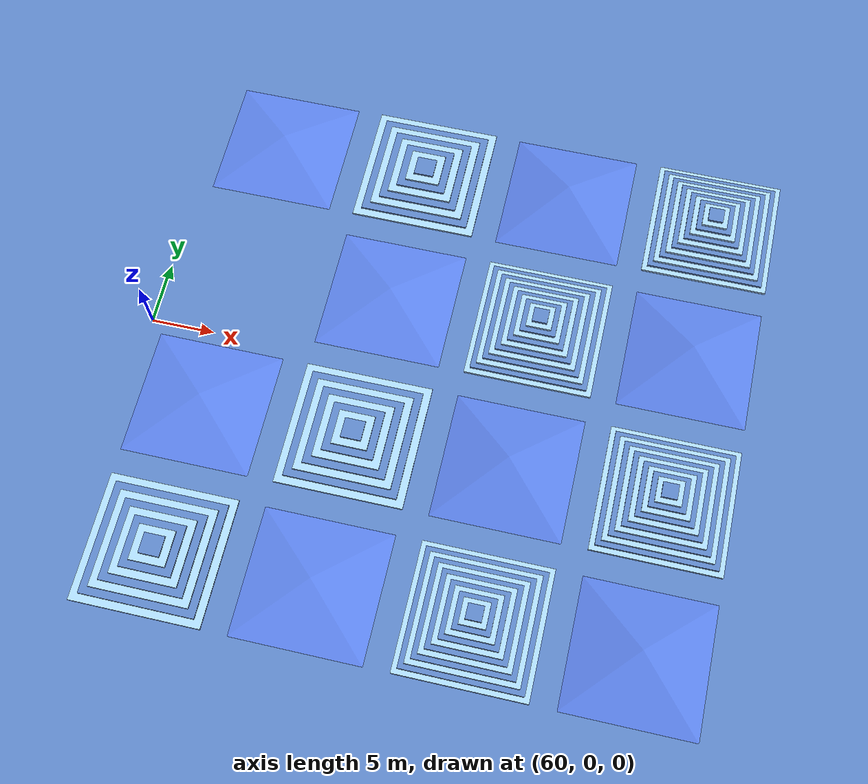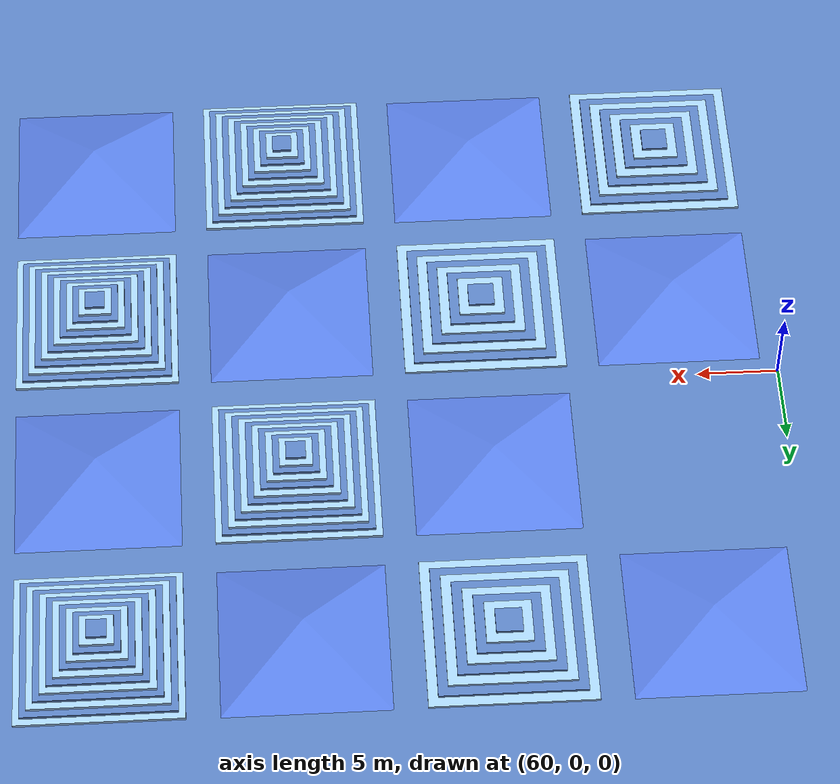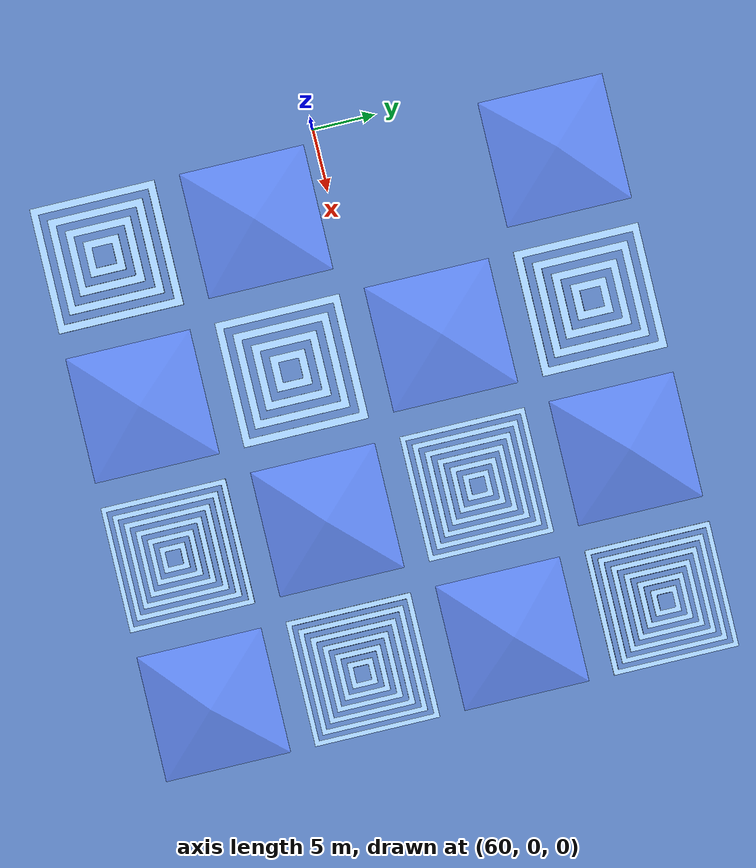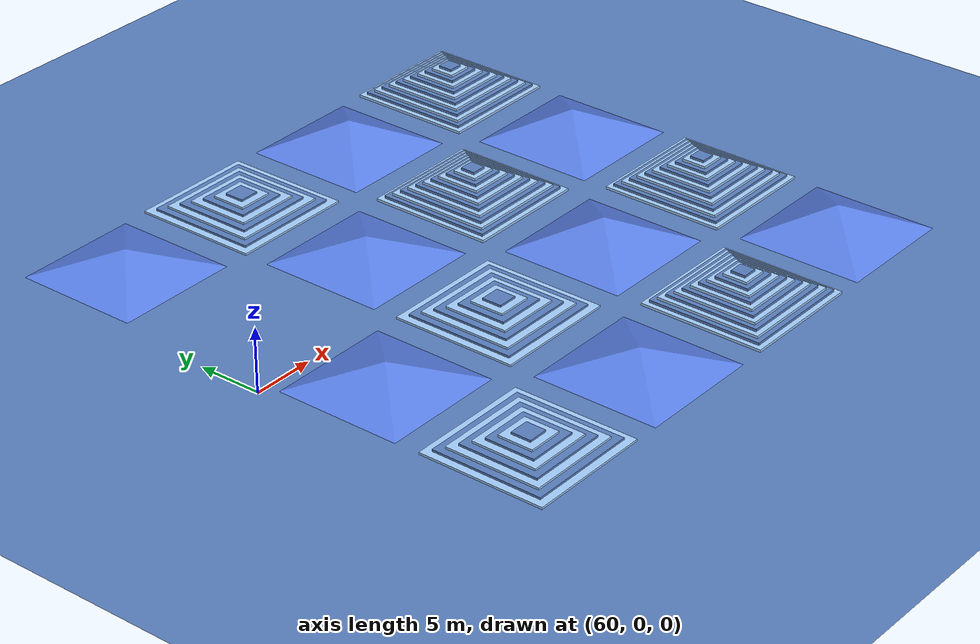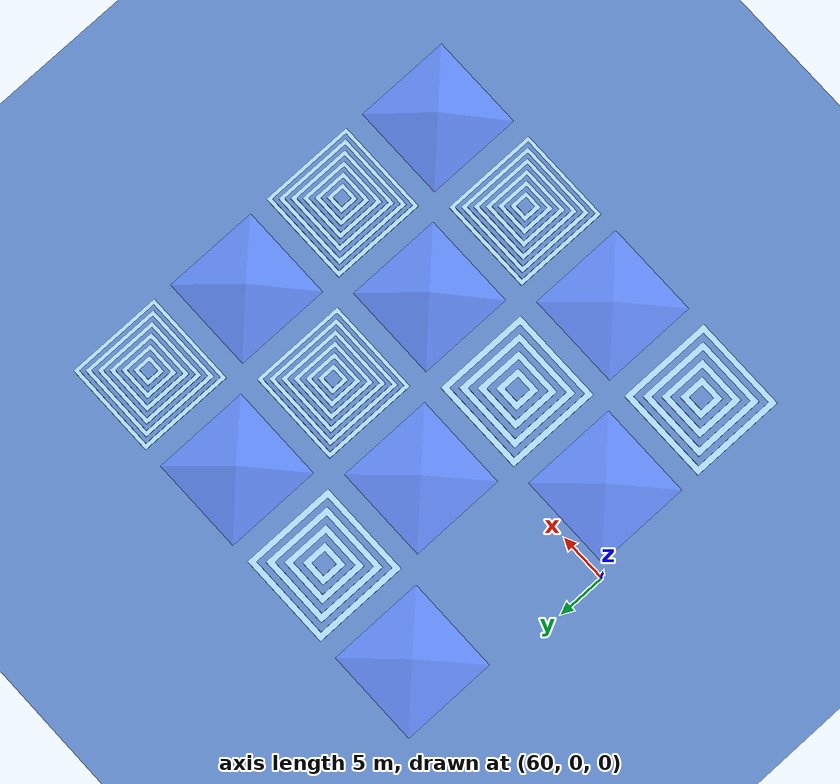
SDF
<sdf version="1.6">
 <world name="mixed_world">
  <model name="ground_plane">
   <static>true</static>
   <link name="link">
    <collision name="collision">
     <geometry><plane><normal>0 0 1</normal><size>500 500</size></plane></geometry>
     <surface><friction><ode><mu>0.8</mu><mu2>0.8</mu2></ode></friction></surface>
    </collision>
    <visual name="visual">
     <geometry><plane><normal>0 0 1</normal><size>500 500</size></plane></geometry>
     <material><ambient>0.35 0.5 0.75 1</ambient><diffuse>0.35 0.5 0.75 1</diffuse></material>
    </visual>
   </link>
  </model>
  <model name="pyramid_lvl3_slope_2">
   <static>true</static>
   <pose>66 -6 0 0 0 0</pose>
   <link name="slope">
    <collision name="c">
     <geometry><mesh><uri>model://kyon_urdf/meshes/pyramid_slope_20deg_10x10.stl</uri></mesh></geometry>
     <surface><friction><ode><mu>0.7</mu><mu2>0.7</mu2></ode></friction></surface>
    </collision>
    <visual name="v">
     <geometry><mesh><uri>model://kyon_urdf/meshes/pyramid_slope_20deg_10x10.stl</uri></mesh></geometry>
     <material><ambient>0.35 0.5 0.9 1</ambient><diffuse>0.35 0.5 0.9 1</diffuse></material>
    </visual>
   </link>
  </model>
  <model name="pyramid_lvl3_slope_3">
   <static>true</static>
   <pose>78 6 0 0 0 0</pose>
   <link name="slope">
    <collision name="c">
     <geometry><mesh><uri>model://kyon_urdf/meshes/pyramid_slope_20deg_10x10.stl</uri></mesh></geometry>
     <surface><friction><ode><mu>0.7</mu><mu2>0.7</mu2></ode></friction></surface>
    </collision>
    <visual name="v">
     <geometry><mesh><uri>model://kyon_urdf/meshes/pyramid_slope_20deg_10x10.stl</uri></mesh></geometry>
     <material><ambient>0.35 0.5 0.9 1</ambient><diffuse>0.35 0.5 0.9 1</diffuse></material>
    </visual>
   </link>
  </model>
  <model name="pyramid_lvl3_stairs_4">
   <static>true</static>
   <pose>78 -6 0 0 0 0</pose>
   <link name="s1">
    <pose>0 0 0.08 0 0 0</pose>
    <collision name="c">
     <geometry><box><size>10 10 0.16</size></box></geometry>
     <surface><friction><ode><mu>0.8</mu><mu2>0.8</mu2></ode></friction></surface>
    </collision>
    <visual name="v">
     <geometry><box><size>10 10 0.16</size></box></geometry>
     <material><ambient>0.65 0.82 1 1</ambient><diffuse>0.65 0.82 1 1</diffuse></material>
    </visual>
   </link>
   <link name="s2">
    <pose>0 0 0.24 0 0 0</pose>
    <collision name="c">
     <geometry><box><size>8.8 8.8 0.16</size></box></geometry>
     <surface><friction><ode><mu>0.8</mu><mu2>0.8</mu2></ode></friction></surface>
    </collision>
    <visual name="v">
     <geometry><box><size>8.8 8.8 0.16</size></box></geometry>
     <material><ambient>0.35 0.5 0.75 1</ambient><diffuse>0.35 0.5 0.75 1</diffuse></material>
    </visual>
   </link>
   <link name="s3">
    <pose>0 0 0.40 0 0 0</pose>
    <collision name="c">
     <geometry><box><size>7.6 7.6 0.16</size></box></geometry>
     <surface><friction><ode><mu>0.8</mu><mu2>0.8</mu2></ode></friction></surface>
    </collision>
    <visual name="v">
     <geometry><box><size>7.6 7.6 0.16</size></box></geometry>
     <material><ambient>0.65 0.82 1 1</ambient><diffuse>0.65 0.82 1 1</diffuse></material>
    </visual>
   </link>
   <link name="s4">
    <pose>0 0 0.56 0 0 0</pose>
    <collision name="c">
     <geometry><box><size>6.4 6.4 0.16</size></box></geometry>
     <surface><friction><ode><mu>0.8</mu><mu2>0.8</mu2></ode></friction></surface>
    </collision>
    <visual name="v">
     <geometry><box><size>6.4 6.4 0.16</size></box></geometry>
     <material><ambient>0.35 0.5 0.75 1</ambient><diffuse>0.35 0.5 0.75 1</diffuse></material>
    </visual>
   </link>
   <link name="s5">
    <pose>0 0 0.72 0 0 0</pose>
    <collision name="c">
     <geometry><box><size>5.2 5.2 0.16</size></box></geometry>
     <surface><friction><ode><mu>0.8</mu><mu2>0.8</mu2></ode></friction></surface>
    </collision>
    <visual name="v">
     <geometry><box><size>5.2 5.2 0.16</size></box></geometry>
     <material><ambient>0.65 0.82 1 1</ambient><diffuse>0.65 0.82 1 1</diffuse></material>
    </visual>
   </link>
   <link name="s6">
    <pose>0 0 0.88 0 0 0</pose>
    <collision name="c">
     <geometry><box><size>4 4 0.16</size></box></geometry>
     <surface><friction><ode><mu>0.8</mu><mu2>0.8</mu2></ode></friction></surface>
    </collision>
    <visual name="v">
     <geometry><box><size>4 4 0.16</size></box></geometry>
     <material><ambient>0.35 0.5 0.75 1</ambient><diffuse>0.35 0.5 0.75 1</diffuse></material>
    </visual>
   </link>
   <link name="s7">
    <pose>0 0 1.04 0 0 0</pose>
    <collision name="c">
     <geometry><box><size>2.8 2.8 0.16</size></box></geometry>
     <surface><friction><ode><mu>0.8</mu><mu2>0.8</mu2></ode></friction></surface>
    </collision>
    <visual name="v">
     <geometry><box><size>2.8 2.8 0.16</size></box></geometry>
     <material><ambient>0.65 0.82 1 1</ambient><diffuse>0.65 0.82 1 1</diffuse></material>
    </visual>
   </link>
   <link name="s8">
    <pose>0 0 1.20 0 0 0</pose>
    <collision name="c">
     <geometry><box><size>1.6 1.6 0.16</size></box></geometry>
     <surface><friction><ode><mu>0.8</mu><mu2>0.8</mu2></ode></friction></surface>
    </collision>
    <visual name="v">
     <geometry><box><size>1.6 1.6 0.16</size></box></geometry>
     <material><ambient>0.35 0.5 0.75 1</ambient><diffuse>0.35 0.5 0.75 1</diffuse></material>
    </visual>
   </link>
  </model>
  <model name="pyramid_lvl3_slope_5">
   <static>true</static>
   <pose>66 18 0 0 0 0</pose>
   <link name="slope">
    <collision name="c">
     <geometry><mesh><uri>model://kyon_urdf/meshes/pyramid_slope_20deg_10x10.stl</uri></mesh></geometry>
     <surface><friction><ode><mu>0.7</mu><mu2>0.7</mu2></ode></friction></surface>
    </collision>
    <visual name="v">
     <geometry><mesh><uri>model://kyon_urdf/meshes/pyramid_slope_20deg_10x10.stl</uri></mesh></geometry>
     <material><ambient>0.35 0.5 0.9 1</ambient><diffuse>0.35 0.5 0.9 1</diffuse></material>
    </visual>
   </link>
  </model>
  <model name="pyramid_lvl3_stairs_6">
   <static>true</static>
   <pose>78 18 0 0 0 0</pose>
   <link name="s1">
    <pose>0 0 0.08 0 0 0</pose>
    <collision name="c">
     <geometry><box><size>10 10 0.16</size></box></geometry>
     <surface><friction><ode><mu>0.8</mu><mu2>0.8</mu2></ode></friction></surface>
    </collision>
    <visual name="v">
     <geometry><box><size>10 10 0.16</size></box></geometry>
     <material><ambient>0.65 0.82 1 1</ambient><diffuse>0.65 0.82 1 1</diffuse></material>
    </visual>
   </link>
   <link name="s2">
    <pose>0 0 0.24 0 0 0</pose>
    <collision name="c">
     <geometry><box><size>8.8 8.8 0.16</size></box></geometry>
     <surface><friction><ode><mu>0.8</mu><mu2>0.8</mu2></ode></friction></surface>
    </collision>
    <visual name="v">
     <geometry><box><size>8.8 8.8 0.16</size></box></geometry>
     <material><ambient>0.35 0.5 0.75 1</ambient><diffuse>0.35 0.5 0.75 1</diffuse></material>
    </visual>
   </link>
   <link name="s3">
    <pose>0 0 0.40 0 0 0</pose>
    <collision name="c">
     <geometry><box><size>7.6 7.6 0.16</size></box></geometry>
     <surface><friction><ode><mu>0.8</mu><mu2>0.8</mu2></ode></friction></surface>
    </collision>
    <visual name="v">
     <geometry><box><size>7.6 7.6 0.16</size></box></geometry>
     <material><ambient>0.65 0.82 1 1</ambient><diffuse>0.65 0.82 1 1</diffuse></material>
    </visual>
   </link>
   <link name="s4">
    <pose>0 0 0.56 0 0 0</pose>
    <collision name="c">
     <geometry><box><size>6.4 6.4 0.16</size></box></geometry>
     <surface><friction><ode><mu>0.8</mu><mu2>0.8</mu2></ode></friction></surface>
    </collision>
    <visual name="v">
     <geometry><box><size>6.4 6.4 0.16</size></box></geometry>
     <material><ambient>0.35 0.5 0.75 1</ambient><diffuse>0.35 0.5 0.75 1</diffuse></material>
    </visual>
   </link>
   <link name="s5">
    <pose>0 0 0.72 0 0 0</pose>
    <collision name="c">
     <geometry><box><size>5.2 5.2 0.16</size></box></geometry>
     <surface><friction><ode><mu>0.8</mu><mu2>0.8</mu2></ode></friction></surface>
    </collision>
    <visual name="v">
     <geometry><box><size>5.2 5.2 0.16</size></box></geometry>
     <material><ambient>0.65 0.82 1 1</ambient><diffuse>0.65 0.82 1 1</diffuse></material>
    </visual>
   </link>
   <link name="s6">
    <pose>0 0 0.88 0 0 0</pose>
    <collision name="c">
     <geometry><box><size>4 4 0.16</size></box></geometry>
     <surface><friction><ode><mu>0.8</mu><mu2>0.8</mu2></ode></friction></surface>
    </collision>
    <visual name="v">
     <geometry><box><size>4 4 0.16</size></box></geometry>
     <material><ambient>0.35 0.5 0.75 1</ambient><diffuse>0.35 0.5 0.75 1</diffuse></material>
    </visual>
   </link>
   <link name="s7">
    <pose>0 0 1.04 0 0 0</pose>
    <collision name="c">
     <geometry><box><size>2.8 2.8 0.16</size></box></geometry>
     <surface><friction><ode><mu>0.8</mu><mu2>0.8</mu2></ode></friction></surface>
    </collision>
    <visual name="v">
     <geometry><box><size>2.8 2.8 0.16</size></box></geometry>
     <material><ambient>0.65 0.82 1 1</ambient><diffuse>0.65 0.82 1 1</diffuse></material>
    </visual>
   </link>
   <link name="s8">
    <pose>0 0 1.20 0 0 0</pose>
    <collision name="c">
     <geometry><box><size>1.6 1.6 0.16</size></box></geometry>
     <surface><friction><ode><mu>0.8</mu><mu2>0.8</mu2></ode></friction></surface>
    </collision>
    <visual name="v">
     <geometry><box><size>1.6 1.6 0.16</size></box></geometry>
     <material><ambient>0.35 0.5 0.75 1</ambient><diffuse>0.35 0.5 0.75 1</diffuse></material>
    </visual>
   </link>
  </model>
  <model name="pyramid_lvl3_stairs_7">
   <static>true</static>
   <pose>66 -18 0 0 0 0</pose>
   <link name="s1">
    <pose>0 0 0.08 0 0 0</pose>
    <collision name="c">
     <geometry><box><size>10 10 0.16</size></box></geometry>
     <surface><friction><ode><mu>0.8</mu><mu2>0.8</mu2></ode></friction></surface>
    </collision>
    <visual name="v">
     <geometry><box><size>10 10 0.16</size></box></geometry>
     <material><ambient>0.65 0.82 1 1</ambient><diffuse>0.65 0.82 1 1</diffuse></material>
    </visual>
   </link>
   <link name="s2">
    <pose>0 0 0.24 0 0 0</pose>
    <collision name="c">
     <geometry><box><size>8.8 8.8 0.16</size></box></geometry>
     <surface><friction><ode><mu>0.8</mu><mu2>0.8</mu2></ode></friction></surface>
    </collision>
    <visual name="v">
     <geometry><box><size>8.8 8.8 0.16</size></box></geometry>
     <material><ambient>0.35 0.5 0.75 1</ambient><diffuse>0.35 0.5 0.75 1</diffuse></material>
    </visual>
   </link>
   <link name="s3">
    <pose>0 0 0.40 0 0 0</pose>
    <collision name="c">
     <geometry><box><size>7.6 7.6 0.16</size></box></geometry>
     <surface><friction><ode><mu>0.8</mu><mu2>0.8</mu2></ode></friction></surface>
    </collision>
    <visual name="v">
     <geometry><box><size>7.6 7.6 0.16</size></box></geometry>
     <material><ambient>0.65 0.82 1 1</ambient><diffuse>0.65 0.82 1 1</diffuse></material>
    </visual>
   </link>
   <link name="s4">
    <pose>0 0 0.56 0 0 0</pose>
    <collision name="c">
     <geometry><box><size>6.4 6.4 0.16</size></box></geometry>
     <surface><friction><ode><mu>0.8</mu><mu2>0.8</mu2></ode></friction></surface>
    </collision>
    <visual name="v">
     <geometry><box><size>6.4 6.4 0.16</size></box></geometry>
     <material><ambient>0.35 0.5 0.75 1</ambient><diffuse>0.35 0.5 0.75 1</diffuse></material>
    </visual>
   </link>
   <link name="s5">
    <pose>0 0 0.72 0 0 0</pose>
    <collision name="c">
     <geometry><box><size>5.2 5.2 0.16</size></box></geometry>
     <surface><friction><ode><mu>0.8</mu><mu2>0.8</mu2></ode></friction></surface>
    </collision>
    <visual name="v">
     <geometry><box><size>5.2 5.2 0.16</size></box></geometry>
     <material><ambient>0.65 0.82 1 1</ambient><diffuse>0.65 0.82 1 1</diffuse></material>
    </visual>
   </link>
   <link name="s6">
    <pose>0 0 0.88 0 0 0</pose>
    <collision name="c">
     <geometry><box><size>4 4 0.16</size></box></geometry>
     <surface><friction><ode><mu>0.8</mu><mu2>0.8</mu2></ode></friction></surface>
    </collision>
    <visual name="v">
     <geometry><box><size>4 4 0.16</size></box></geometry>
     <material><ambient>0.35 0.5 0.75 1</ambient><diffuse>0.35 0.5 0.75 1</diffuse></material>
    </visual>
   </link>
   <link name="s7">
    <pose>0 0 1.04 0 0 0</pose>
    <collision name="c">
     <geometry><box><size>2.8 2.8 0.16</size></box></geometry>
     <surface><friction><ode><mu>0.8</mu><mu2>0.8</mu2></ode></friction></surface>
    </collision>
    <visual name="v">
     <geometry><box><size>2.8 2.8 0.16</size></box></geometry>
     <material><ambient>0.65 0.82 1 1</ambient><diffuse>0.65 0.82 1 1</diffuse></material>
    </visual>
   </link>
   <link name="s8">
    <pose>0 0 1.20 0 0 0</pose>
    <collision name="c">
     <geometry><box><size>1.6 1.6 0.16</size></box></geometry>
     <surface><friction><ode><mu>0.8</mu><mu2>0.8</mu2></ode></friction></surface>
    </collision>
    <visual name="v">
     <geometry><box><size>1.6 1.6 0.16</size></box></geometry>
     <material><ambient>0.35 0.5 0.75 1</ambient><diffuse>0.35 0.5 0.75 1</diffuse></material>
    </visual>
   </link>
  </model>
  <model name="pyramid_lvl3_slope_8">
   <static>true</static>
   <pose>78 -18 0 0 0 0</pose>
   <link name="slope">
    <collision name="c">
     <geometry><mesh><uri>model://kyon_urdf/meshes/pyramid_slope_20deg_10x10.stl</uri></mesh></geometry>
     <surface><friction><ode><mu>0.7</mu><mu2>0.7</mu2></ode></friction></surface>
    </collision>
    <visual name="v">
     <geometry><mesh><uri>model://kyon_urdf/meshes/pyramid_slope_20deg_10x10.stl</uri></mesh></geometry>
     <material><ambient>0.35 0.5 0.9 1</ambient><diffuse>0.35 0.5 0.9 1</diffuse></material>
    </visual>
   </link>
  </model>
  <model name="pyramid_lvl4_stairs_1">
   <static>true</static>
   <pose>90 6 0 0 0 0</pose>
   <link name="s1">
    <pose>0 0 0.10 0 0 0</pose>
    <collision name="c">
     <geometry><box><size>10 10 0.20</size></box></geometry>
     <surface><friction><ode><mu>0.8</mu><mu2>0.8</mu2></ode></friction></surface>
    </collision>
    <visual name="v">
     <geometry><box><size>10 10 0.20</size></box></geometry>
     <material><ambient>0.65 0.82 1 1</ambient><diffuse>0.65 0.82 1 1</diffuse></material>
    </visual>
   </link>
   <link name="s2">
    <pose>0 0 0.30 0 0 0</pose>
    <collision name="c">
     <geometry><box><size>9.2 9.2 0.20</size></box></geometry>
     <surface><friction><ode><mu>0.8</mu><mu2>0.8</mu2></ode></friction></surface>
    </collision>
    <visual name="v">
     <geometry><box><size>9.2 9.2 0.20</size></box></geometry>
     <material><ambient>0.35 0.5 0.75 1</ambient><diffuse>0.35 0.5 0.75 1</diffuse></material>
    </visual>
   </link>
   <link name="s3">
    <pose>0 0 0.50 0 0 0</pose>
    <collision name="c">
     <geometry><box><size>8.4 8.4 0.20</size></box></geometry>
     <surface><friction><ode><mu>0.8</mu><mu2>0.8</mu2></ode></friction></surface>
    </collision>
    <visual name="v">
     <geometry><box><size>8.4 8.4 0.20</size></box></geometry>
     <material><ambient>0.65 0.82 1 1</ambient><diffuse>0.65 0.82 1 1</diffuse></material>
    </visual>
   </link>
   <link name="s4">
    <pose>0 0 0.70 0 0 0</pose>
    <collision name="c">
     <geometry><box><size>7.6 7.6 0.20</size></box></geometry>
     <surface><friction><ode><mu>0.8</mu><mu2>0.8</mu2></ode></friction></surface>
    </collision>
    <visual name="v">
     <geometry><box><size>7.6 7.6 0.20</size></box></geometry>
     <material><ambient>0.35 0.5 0.75 1</ambient><diffuse>0.35 0.5 0.75 1</diffuse></material>
    </visual>
   </link>
   <link name="s5">
    <pose>0 0 0.90 0 0 0</pose>
    <collision name="c">
     <geometry><box><size>6.8 6.8 0.20</size></box></geometry>
     <surface><friction><ode><mu>0.8</mu><mu2>0.8</mu2></ode></friction></surface>
    </collision>
    <visual name="v">
     <geometry><box><size>6.8 6.8 0.20</size></box></geometry>
     <material><ambient>0.65 0.82 1 1</ambient><diffuse>0.65 0.82 1 1</diffuse></material>
    </visual>
   </link>
   <link name="s6">
    <pose>0 0 1.10 0 0 0</pose>
    <collision name="c">
     <geometry><box><size>6 6 0.20</size></box></geometry>
     <surface><friction><ode><mu>0.8</mu><mu2>0.8</mu2></ode></friction></surface>
    </collision>
    <visual name="v">
     <geometry><box><size>6 6 0.20</size></box></geometry>
     <material><ambient>0.35 0.5 0.75 1</ambient><diffuse>0.35 0.5 0.75 1</diffuse></material>
    </visual>
   </link>
   <link name="s7">
    <pose>0 0 1.30 0 0 0</pose>
    <collision name="c">
     <geometry><box><size>5.2 5.2 0.20</size></box></geometry>
     <surface><friction><ode><mu>0.8</mu><mu2>0.8</mu2></ode></friction></surface>
    </collision>
    <visual name="v">
     <geometry><box><size>5.2 5.2 0.20</size></box></geometry>
     <material><ambient>0.65 0.82 1 1</ambient><diffuse>0.65 0.82 1 1</diffuse></material>
    </visual>
   </link>
   <link name="s8">
    <pose>0 0 1.50 0 0 0</pose>
    <collision name="c">
     <geometry><box><size>4.4 4.4 0.20</size></box></geometry>
     <surface><friction><ode><mu>0.8</mu><mu2>0.8</mu2></ode></friction></surface>
    </collision>
    <visual name="v">
     <geometry><box><size>4.4 4.4 0.20</size></box></geometry>
     <material><ambient>0.35 0.5 0.75 1</ambient><diffuse>0.35 0.5 0.75 1</diffuse></material>
    </visual>
   </link>
   <link name="s9">
    <pose>0 0 1.70 0 0 0</pose>
    <collision name="c">
     <geometry><box><size>3.6 3.6 0.20</size></box></geometry>
     <surface><friction><ode><mu>0.8</mu><mu2>0.8</mu2></ode></friction></surface>
    </collision>
    <visual name="v">
     <geometry><box><size>3.6 3.6 0.20</size></box></geometry>
     <material><ambient>0.65 0.82 1 1</ambient><diffuse>0.65 0.82 1 1</diffuse></material>
    </visual>
   </link>
   <link name="s10">
    <pose>0 0 1.90 0 0 0</pose>
    <collision name="c">
     <geometry><box><size>2.8 2.8 0.20</size></box></geometry>
     <surface><friction><ode><mu>0.8</mu><mu2>0.8</mu2></ode></friction></surface>
    </collision>
    <visual name="v">
     <geometry><box><size>2.8 2.8 0.20</size></box></geometry>
     <material><ambient>0.35 0.5 0.75 1</ambient><diffuse>0.35 0.5 0.75 1</diffuse></material>
    </visual>
   </link>
   <link name="s11">
    <pose>0 0 2.10 0 0 0</pose>
    <collision name="c">
     <geometry><box><size>2 2 0.20</size></box></geometry>
     <surface><friction><ode><mu>0.8</mu><mu2>0.8</mu2></ode></friction></surface>
    </collision>
    <visual name="v">
     <geometry><box><size>2 2 0.20</size></box></geometry>
     <material><ambient>0.65 0.82 1 1</ambient><diffuse>0.65 0.82 1 1</diffuse></material>
    </visual>
   </link>
   <link name="s12">
    <pose>0 0 2.30 0 0 0</pose>
    <collision name="c">
     <geometry><box><size>1.2 1.2 0.20</size></box></geometry>
     <surface><friction><ode><mu>0.8</mu><mu2>0.8</mu2></ode></friction></surface>
    </collision>
    <visual name="v">
     <geometry><box><size>1.2 1.2 0.20</size></box></geometry>
     <material><ambient>0.35 0.5 0.75 1</ambient><diffuse>0.35 0.5 0.75 1</diffuse></material>
    </visual>
   </link>
  </model>
  <model name="pyramid_lvl4_slope_2">
   <static>true</static>
   <pose>90 -6 0 0 0 0</pose>
   <link name="slope">
    <collision name="c">
     <geometry><mesh><uri>model://kyon_urdf/meshes/pyramid_slope_25deg_10x10.stl</uri></mesh></geometry>
     <surface><friction><ode><mu>0.7</mu><mu2>0.7</mu2></ode></friction></surface>
    </collision>
    <visual name="v">
     <geometry><mesh><uri>model://kyon_urdf/meshes/pyramid_slope_25deg_10x10.stl</uri></mesh></geometry>
     <material><ambient>0.35 0.5 0.9 1</ambient><diffuse>0.35 0.5 0.9 1</diffuse></material>
    </visual>
   </link>
  </model>
  <model name="pyramid_lvl4_slope_3">
   <static>true</static>
   <pose>102 6 0 0 0 0</pose>
   <link name="slope">
    <collision name="c">
     <geometry><mesh><uri>model://kyon_urdf/meshes/pyramid_slope_25deg_10x10.stl</uri></mesh></geometry>
     <surface><friction><ode><mu>0.7</mu><mu2>0.7</mu2></ode></friction></surface>
    </collision>
    <visual name="v">
     <geometry><mesh><uri>model://kyon_urdf/meshes/pyramid_slope_25deg_10x10.stl</uri></mesh></geometry>
     <material><ambient>0.35 0.5 0.9 1</ambient><diffuse>0.35 0.5 0.9 1</diffuse></material>
    </visual>
   </link>
  </model>
  <model name="pyramid_lvl4_stairs_4">
   <static>true</static>
   <pose>102 -6 0 0 0 0</pose>
   <link name="s1">
    <pose>0 0 0.10 0 0 0</pose>
    <collision name="c">
     <geometry><box><size>10 10 0.20</size></box></geometry>
     <surface><friction><ode><mu>0.8</mu><mu2>0.8</mu2></ode></friction></surface>
    </collision>
    <visual name="v">
     <geometry><box><size>10 10 0.20</size></box></geometry>
     <material><ambient>0.65 0.82 1 1</ambient><diffuse>0.65 0.82 1 1</diffuse></material>
    </visual>
   </link>
   <link name="s2">
    <pose>0 0 0.30 0 0 0</pose>
    <collision name="c">
     <geometry><box><size>9.2 9.2 0.20</size></box></geometry>
     <surface><friction><ode><mu>0.8</mu><mu2>0.8</mu2></ode></friction></surface>
    </collision>
    <visual name="v">
     <geometry><box><size>9.2 9.2 0.20</size></box></geometry>
     <material><ambient>0.35 0.5 0.75 1</ambient><diffuse>0.35 0.5 0.75 1</diffuse></material>
    </visual>
   </link>
   <link name="s3">
    <pose>0 0 0.50 0 0 0</pose>
    <collision name="c">
     <geometry><box><size>8.4 8.4 0.20</size></box></geometry>
     <surface><friction><ode><mu>0.8</mu><mu2>0.8</mu2></ode></friction></surface>
    </collision>
    <visual name="v">
     <geometry><box><size>8.4 8.4 0.20</size></box></geometry>
     <material><ambient>0.65 0.82 1 1</ambient><diffuse>0.65 0.82 1 1</diffuse></material>
    </visual>
   </link>
   <link name="s4">
    <pose>0 0 0.70 0 0 0</pose>
    <collision name="c">
     <geometry><box><size>7.6 7.6 0.20</size></box></geometry>
     <surface><friction><ode><mu>0.8</mu><mu2>0.8</mu2></ode></friction></surface>
    </collision>
    <visual name="v">
     <geometry><box><size>7.6 7.6 0.20</size></box></geometry>
     <material><ambient>0.35 0.5 0.75 1</ambient><diffuse>0.35 0.5 0.75 1</diffuse></material>
    </visual>
   </link>
   <link name="s5">
    <pose>0 0 0.90 0 0 0</pose>
    <collision name="c">
     <geometry><box><size>6.8 6.8 0.20</size></box></geometry>
     <surface><friction><ode><mu>0.8</mu><mu2>0.8</mu2></ode></friction></surface>
    </collision>
    <visual name="v">
     <geometry><box><size>6.8 6.8 0.20</size></box></geometry>
     <material><ambient>0.65 0.82 1 1</ambient><diffuse>0.65 0.82 1 1</diffuse></material>
    </visual>
   </link>
   <link name="s6">
    <pose>0 0 1.10 0 0 0</pose>
    <collision name="c">
     <geometry><box><size>6 6 0.20</size></box></geometry>
     <surface><friction><ode><mu>0.8</mu><mu2>0.8</mu2></ode></friction></surface>
    </collision>
    <visual name="v">
     <geometry><box><size>6 6 0.20</size></box></geometry>
     <material><ambient>0.35 0.5 0.75 1</ambient><diffuse>0.35 0.5 0.75 1</diffuse></material>
    </visual>
   </link>
   <link name="s7">
    <pose>0 0 1.30 0 0 0</pose>
    <collision name="c">
     <geometry><box><size>5.2 5.2 0.20</size></box></geometry>
     <surface><friction><ode><mu>0.8</mu><mu2>0.8</mu2></ode></friction></surface>
    </collision>
    <visual name="v">
     <geometry><box><size>5.2 5.2 0.20</size></box></geometry>
     <material><ambient>0.65 0.82 1 1</ambient><diffuse>0.65 0.82 1 1</diffuse></material>
    </visual>
   </link>
   <link name="s8">
    <pose>0 0 1.50 0 0 0</pose>
    <collision name="c">
     <geometry><box><size>4.4 4.4 0.20</size></box></geometry>
     <surface><friction><ode><mu>0.8</mu><mu2>0.8</mu2></ode></friction></surface>
    </collision>
    <visual name="v">
     <geometry><box><size>4.4 4.4 0.20</size></box></geometry>
     <material><ambient>0.35 0.5 0.75 1</ambient><diffuse>0.35 0.5 0.75 1</diffuse></material>
    </visual>
   </link>
   <link name="s9">
    <pose>0 0 1.70 0 0 0</pose>
    <collision name="c">
     <geometry><box><size>3.6 3.6 0.20</size></box></geometry>
     <surface><friction><ode><mu>0.8</mu><mu2>0.8</mu2></ode></friction></surface>
    </collision>
    <visual name="v">
     <geometry><box><size>3.6 3.6 0.20</size></box></geometry>
     <material><ambient>0.65 0.82 1 1</ambient><diffuse>0.65 0.82 1 1</diffuse></material>
    </visual>
   </link>
   <link name="s10">
    <pose>0 0 1.90 0 0 0</pose>
    <collision name="c">
     <geometry><box><size>2.8 2.8 0.20</size></box></geometry>
     <surface><friction><ode><mu>0.8</mu><mu2>0.8</mu2></ode></friction></surface>
    </collision>
    <visual name="v">
     <geometry><box><size>2.8 2.8 0.20</size></box></geometry>
     <material><ambient>0.35 0.5 0.75 1</ambient><diffuse>0.35 0.5 0.75 1</diffuse></material>
    </visual>
   </link>
   <link name="s11">
    <pose>0 0 2.10 0 0 0</pose>
    <collision name="c">
     <geometry><box><size>2 2 0.20</size></box></geometry>
     <surface><friction><ode><mu>0.8</mu><mu2>0.8</mu2></ode></friction></surface>
    </collision>
    <visual name="v">
     <geometry><box><size>2 2 0.20</size></box></geometry>
     <material><ambient>0.65 0.82 1 1</ambient><diffuse>0.65 0.82 1 1</diffuse></material>
    </visual>
   </link>
   <link name="s12">
    <pose>0 0 2.30 0 0 0</pose>
    <collision name="c">
     <geometry><box><size>1.2 1.2 0.20</size></box></geometry>
     <surface><friction><ode><mu>0.8</mu><mu2>0.8</mu2></ode></friction></surface>
    </collision>
    <visual name="v">
     <geometry><box><size>1.2 1.2 0.20</size></box></geometry>
     <material><ambient>0.35 0.5 0.75 1</ambient><diffuse>0.35 0.5 0.75 1</diffuse></material>
    </visual>
   </link>
  </model>
  <model name="pyramid_lvl4_slope_5">
   <static>true</static>
   <pose>90 18 0 0 0 0</pose>
   <link name="slope">
    <collision name="c">
     <geometry><mesh><uri>model://kyon_urdf/meshes/pyramid_slope_25deg_10x10.stl</uri></mesh></geometry>
     <surface><friction><ode><mu>0.7</mu><mu2>0.7</mu2></ode></friction></surface>
    </collision>
    <visual name="v">
     <geometry><mesh><uri>model://kyon_urdf/meshes/pyramid_slope_25deg_10x10.stl</uri></mesh></geometry>
     <material><ambient>0.35 0.5 0.9 1</ambient><diffuse>0.35 0.5 0.9 1</diffuse></material>
    </visual>
   </link>
  </model>
  <model name="pyramid_lvl4_stairs_6">
   <static>true</static>
   <pose>102 18 0 0 0 0</pose>
   <link name="s1">
    <pose>0 0 0.10 0 0 0</pose>
    <collision name="c">
     <geometry><box><size>10 10 0.20</size></box></geometry>
     <surface><friction><ode><mu>0.8</mu><mu2>0.8</mu2></ode></friction></surface>
    </collision>
    <visual name="v">
     <geometry><box><size>10 10 0.20</size></box></geometry>
     <material><ambient>0.65 0.82 1 1</ambient><diffuse>0.65 0.82 1 1</diffuse></material>
    </visual>
   </link>
   <link name="s2">
    <pose>0 0 0.30 0 0 0</pose>
    <collision name="c">
     <geometry><box><size>9.2 9.2 0.20</size></box></geometry>
     <surface><friction><ode><mu>0.8</mu><mu2>0.8</mu2></ode></friction></surface>
    </collision>
    <visual name="v">
     <geometry><box><size>9.2 9.2 0.20</size></box></geometry>
     <material><ambient>0.35 0.5 0.75 1</ambient><diffuse>0.35 0.5 0.75 1</diffuse></material>
    </visual>
   </link>
   <link name="s3">
    <pose>0 0 0.50 0 0 0</pose>
    <collision name="c">
     <geometry><box><size>8.4 8.4 0.20</size></box></geometry>
     <surface><friction><ode><mu>0.8</mu><mu2>0.8</mu2></ode></friction></surface>
    </collision>
    <visual name="v">
     <geometry><box><size>8.4 8.4 0.20</size></box></geometry>
     <material><ambient>0.65 0.82 1 1</ambient><diffuse>0.65 0.82 1 1</diffuse></material>
    </visual>
   </link>
   <link name="s4">
    <pose>0 0 0.70 0 0 0</pose>
    <collision name="c">
     <geometry><box><size>7.6 7.6 0.20</size></box></geometry>
     <surface><friction><ode><mu>0.8</mu><mu2>0.8</mu2></ode></friction></surface>
    </collision>
    <visual name="v">
     <geometry><box><size>7.6 7.6 0.20</size></box></geometry>
     <material><ambient>0.35 0.5 0.75 1</ambient><diffuse>0.35 0.5 0.75 1</diffuse></material>
    </visual>
   </link>
   <link name="s5">
    <pose>0 0 0.90 0 0 0</pose>
    <collision name="c">
     <geometry><box><size>6.8 6.8 0.20</size></box></geometry>
     <surface><friction><ode><mu>0.8</mu><mu2>0.8</mu2></ode></friction></surface>
    </collision>
    <visual name="v">
     <geometry><box><size>6.8 6.8 0.20</size></box></geometry>
     <material><ambient>0.65 0.82 1 1</ambient><diffuse>0.65 0.82 1 1</diffuse></material>
    </visual>
   </link>
   <link name="s6">
    <pose>0 0 1.10 0 0 0</pose>
    <collision name="c">
     <geometry><box><size>6 6 0.20</size></box></geometry>
     <surface><friction><ode><mu>0.8</mu><mu2>0.8</mu2></ode></friction></surface>
    </collision>
    <visual name="v">
     <geometry><box><size>6 6 0.20</size></box></geometry>
     <material><ambient>0.35 0.5 0.75 1</ambient><diffuse>0.35 0.5 0.75 1</diffuse></material>
    </visual>
   </link>
   <link name="s7">
    <pose>0 0 1.30 0 0 0</pose>
    <collision name="c">
     <geometry><box><size>5.2 5.2 0.20</size></box></geometry>
     <surface><friction><ode><mu>0.8</mu><mu2>0.8</mu2></ode></friction></surface>
    </collision>
    <visual name="v">
     <geometry><box><size>5.2 5.2 0.20</size></box></geometry>
     <material><ambient>0.65 0.82 1 1</ambient><diffuse>0.65 0.82 1 1</diffuse></material>
    </visual>
   </link>
   <link name="s8">
    <pose>0 0 1.50 0 0 0</pose>
    <collision name="c">
     <geometry><box><size>4.4 4.4 0.20</size></box></geometry>
     <surface><friction><ode><mu>0.8</mu><mu2>0.8</mu2></ode></friction></surface>
    </collision>
    <visual name="v">
     <geometry><box><size>4.4 4.4 0.20</size></box></geometry>
     <material><ambient>0.35 0.5 0.75 1</ambient><diffuse>0.35 0.5 0.75 1</diffuse></material>
    </visual>
   </link>
   <link name="s9">
    <pose>0 0 1.70 0 0 0</pose>
    <collision name="c">
     <geometry><box><size>3.6 3.6 0.20</size></box></geometry>
     <surface><friction><ode><mu>0.8</mu><mu2>0.8</mu2></ode></friction></surface>
    </collision>
    <visual name="v">
     <geometry><box><size>3.6 3.6 0.20</size></box></geometry>
     <material><ambient>0.65 0.82 1 1</ambient><diffuse>0.65 0.82 1 1</diffuse></material>
    </visual>
   </link>
   <link name="s10">
    <pose>0 0 1.90 0 0 0</pose>
    <collision name="c">
     <geometry><box><size>2.8 2.8 0.20</size></box></geometry>
     <surface><friction><ode><mu>0.8</mu><mu2>0.8</mu2></ode></friction></surface>
    </collision>
    <visual name="v">
     <geometry><box><size>2.8 2.8 0.20</size></box></geometry>
     <material><ambient>0.35 0.5 0.75 1</ambient><diffuse>0.35 0.5 0.75 1</diffuse></material>
    </visual>
   </link>
   <link name="s11">
    <pose>0 0 2.10 0 0 0</pose>
    <collision name="c">
     <geometry><box><size>2 2 0.20</size></box></geometry>
     <surface><friction><ode><mu>0.8</mu><mu2>0.8</mu2></ode></friction></surface>
    </collision>
    <visual name="v">
     <geometry><box><size>2 2 0.20</size></box></geometry>
     <material><ambient>0.65 0.82 1 1</ambient><diffuse>0.65 0.82 1 1</diffuse></material>
    </visual>
   </link>
   <link name="s12">
    <pose>0 0 2.30 0 0 0</pose>
    <collision name="c">
     <geometry><box><size>1.2 1.2 0.20</size></box></geometry>
     <surface><friction><ode><mu>0.8</mu><mu2>0.8</mu2></ode></friction></surface>
    </collision>
    <visual name="v">
     <geometry><box><size>1.2 1.2 0.20</size></box></geometry>
     <material><ambient>0.35 0.5 0.75 1</ambient><diffuse>0.35 0.5 0.75 1</diffuse></material>
    </visual>
   </link>
  </model>
  <model name="pyramid_lvl4_stairs_7">
   <static>true</static>
   <pose>90 -18 0 0 0 0</pose>
   <link name="s1">
    <pose>0 0 0.10 0 0 0</pose>
    <collision name="c">
     <geometry><box><size>10 10 0.20</size></box></geometry>
     <surface><friction><ode><mu>0.8</mu><mu2>0.8</mu2></ode></friction></surface>
    </collision>
    <visual name="v">
     <geometry><box><size>10 10 0.20</size></box></geometry>
     <material><ambient>0.65 0.82 1 1</ambient><diffuse>0.65 0.82 1 1</diffuse></material>
    </visual>
   </link>
   <link name="s2">
    <pose>0 0 0.30 0 0 0</pose>
    <collision name="c">
     <geometry><box><size>9.2 9.2 0.20</size></box></geometry>
     <surface><friction><ode><mu>0.8</mu><mu2>0.8</mu2></ode></friction></surface>
    </collision>
    <visual name="v">
     <geometry><box><size>9.2 9.2 0.20</size></box></geometry>
     <material><ambient>0.35 0.5 0.75 1</ambient><diffuse>0.35 0.5 0.75 1</diffuse></material>
    </visual>
   </link>
   <link name="s3">
    <pose>0 0 0.50 0 0 0</pose>
    <collision name="c">
     <geometry><box><size>8.4 8.4 0.20</size></box></geometry>
     <surface><friction><ode><mu>0.8</mu><mu2>0.8</mu2></ode></friction></surface>
    </collision>
    <visual name="v">
     <geometry><box><size>8.4 8.4 0.20</size></box></geometry>
     <material><ambient>0.65 0.82 1 1</ambient><diffuse>0.65 0.82 1 1</diffuse></material>
    </visual>
   </link>
   <link name="s4">
    <pose>0 0 0.70 0 0 0</pose>
    <collision name="c">
     <geometry><box><size>7.6 7.6 0.20</size></box></geometry>
     <surface><friction><ode><mu>0.8</mu><mu2>0.8</mu2></ode></friction></surface>
    </collision>
    <visual name="v">
     <geometry><box><size>7.6 7.6 0.20</size></box></geometry>
     <material><ambient>0.35 0.5 0.75 1</ambient><diffuse>0.35 0.5 0.75 1</diffuse></material>
    </visual>
   </link>
   <link name="s5">
    <pose>0 0 0.90 0 0 0</pose>
    <collision name="c">
     <geometry><box><size>6.8 6.8 0.20</size></box></geometry>
     <surface><friction><ode><mu>0.8</mu><mu2>0.8</mu2></ode></friction></surface>
    </collision>
    <visual name="v">
     <geometry><box><size>6.8 6.8 0.20</size></box></geometry>
     <material><ambient>0.65 0.82 1 1</ambient><diffuse>0.65 0.82 1 1</diffuse></material>
    </visual>
   </link>
   <link name="s6">
    <pose>0 0 1.10 0 0 0</pose>
    <collision name="c">
     <geometry><box><size>6 6 0.20</size></box></geometry>
     <surface><friction><ode><mu>0.8</mu><mu2>0.8</mu2></ode></friction></surface>
    </collision>
    <visual name="v">
     <geometry><box><size>6 6 0.20</size></box></geometry>
     <material><ambient>0.35 0.5 0.75 1</ambient><diffuse>0.35 0.5 0.75 1</diffuse></material>
    </visual>
   </link>
   <link name="s7">
    <pose>0 0 1.30 0 0 0</pose>
    <collision name="c">
     <geometry><box><size>5.2 5.2 0.20</size></box></geometry>
     <surface><friction><ode><mu>0.8</mu><mu2>0.8</mu2></ode></friction></surface>
    </collision>
    <visual name="v">
     <geometry><box><size>5.2 5.2 0.20</size></box></geometry>
     <material><ambient>0.65 0.82 1 1</ambient><diffuse>0.65 0.82 1 1</diffuse></material>
    </visual>
   </link>
   <link name="s8">
    <pose>0 0 1.50 0 0 0</pose>
    <collision name="c">
     <geometry><box><size>4.4 4.4 0.20</size></box></geometry>
     <surface><friction><ode><mu>0.8</mu><mu2>0.8</mu2></ode></friction></surface>
    </collision>
    <visual name="v">
     <geometry><box><size>4.4 4.4 0.20</size></box></geometry>
     <material><ambient>0.35 0.5 0.75 1</ambient><diffuse>0.35 0.5 0.75 1</diffuse></material>
    </visual>
   </link>
   <link name="s9">
    <pose>0 0 1.70 0 0 0</pose>
    <collision name="c">
     <geometry><box><size>3.6 3.6 0.20</size></box></geometry>
     <surface><friction><ode><mu>0.8</mu><mu2>0.8</mu2></ode></friction></surface>
    </collision>
    <visual name="v">
     <geometry><box><size>3.6 3.6 0.20</size></box></geometry>
     <material><ambient>0.65 0.82 1 1</ambient><diffuse>0.65 0.82 1 1</diffuse></material>
    </visual>
   </link>
   <link name="s10">
    <pose>0 0 1.90 0 0 0</pose>
    <collision name="c">
     <geometry><box><size>2.8 2.8 0.20</size></box></geometry>
     <surface><friction><ode><mu>0.8</mu><mu2>0.8</mu2></ode></friction></surface>
    </collision>
    <visual name="v">
     <geometry><box><size>2.8 2.8 0.20</size></box></geometry>
     <material><ambient>0.35 0.5 0.75 1</ambient><diffuse>0.35 0.5 0.75 1</diffuse></material>
    </visual>
   </link>
   <link name="s11">
    <pose>0 0 2.10 0 0 0</pose>
    <collision name="c">
     <geometry><box><size>2 2 0.20</size></box></geometry>
     <surface><friction><ode><mu>0.8</mu><mu2>0.8</mu2></ode></friction></surface>
    </collision>
    <visual name="v">
     <geometry><box><size>2 2 0.20</size></box></geometry>
     <material><ambient>0.65 0.82 1 1</ambient><diffuse>0.65 0.82 1 1</diffuse></material>
    </visual>
   </link>
   <link name="s12">
    <pose>0 0 2.30 0 0 0</pose>
    <collision name="c">
     <geometry><box><size>1.2 1.2 0.20</size></box></geometry>
     <surface><friction><ode><mu>0.8</mu><mu2>0.8</mu2></ode></friction></surface>
    </collision>
    <visual name="v">
     <geometry><box><size>1.2 1.2 0.20</size></box></geometry>
     <material><ambient>0.35 0.5 0.75 1</ambient><diffuse>0.35 0.5 0.75 1</diffuse></material>
    </visual>
   </link>
  </model>
  <model name="pyramid_lvl4_slope_8">
   <static>true</static>
   <pose>102 -18 0 0 0 0</pose>
   <link name="slope">
    <collision name="c">
     <geometry><mesh><uri>model://kyon_urdf/meshes/pyramid_slope_25deg_10x10.stl</uri></mesh></geometry>
     <surface><friction><ode><mu>0.7</mu><mu2>0.7</mu2></ode></friction></surface>
    </collision>
    <visual name="v">
     <geometry><mesh><uri>model://kyon_urdf/meshes/pyramid_slope_25deg_10x10.stl</uri></mesh></geometry>
     <material><ambient>0.35 0.5 0.9 1</ambient><diffuse>0.35 0.5 0.9 1</diffuse></material>
    </visual>
   </link>
  </model>
 </world>
</sdf>
